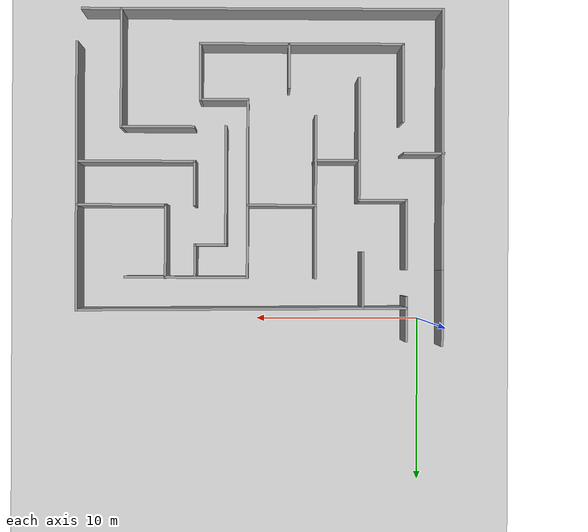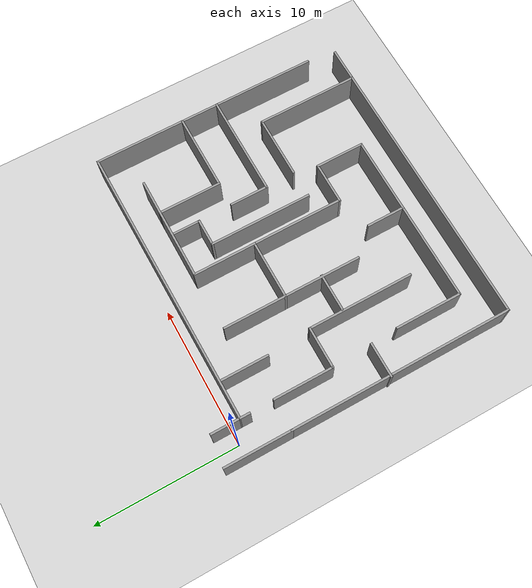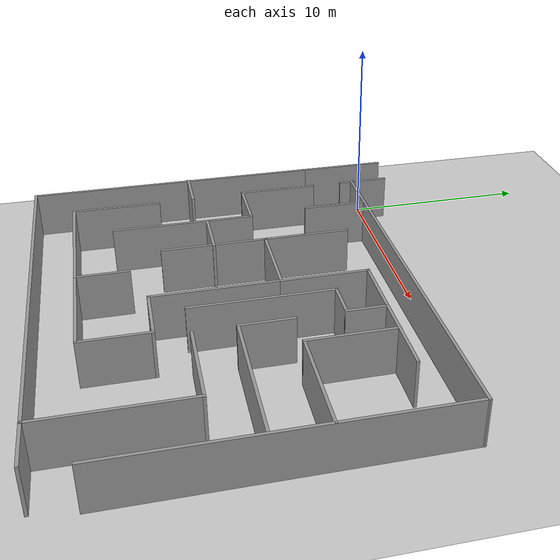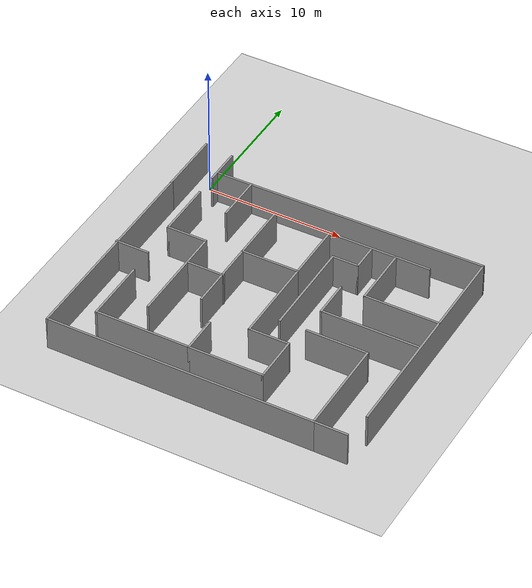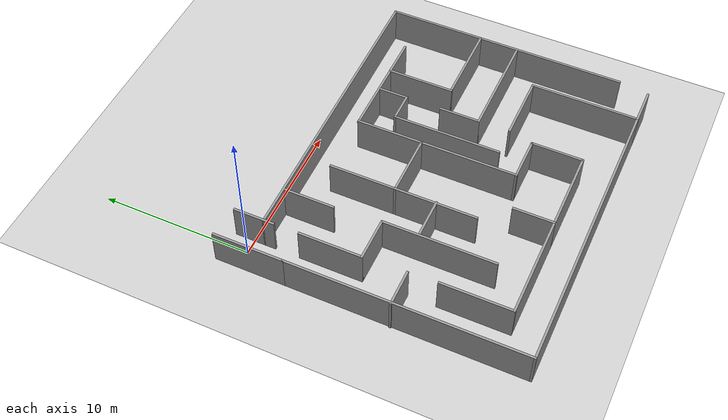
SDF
<sdf version="1.7">
 <world name="default">
  <light name="sun" type="directional">
   <pose>0 0 10 0 -0 0</pose>
   <diffuse>0.8 0.8 0.8 1</diffuse>
   <specular>0.2 0.2 0.2 1</specular>
   <attenuation>
    <range>1000</range>
    <constant>0.9</constant>
    <linear>0.01</linear>
    <quadratic>0.001</quadratic>
   </attenuation>
   <direction>-0.5 0.1 -0.9</direction>
   <spot><inner_angle>0</inner_angle><outer_angle>0</outer_angle><falloff>0</falloff></spot>
  </light>
  <model name="ground_plane">
   <static>1</static>
   <link name="link">
    <collision name="collision">
     <geometry><plane><normal>0 0 1</normal><size>100 100</size></plane></geometry>
     <surface><friction><ode><mu>100</mu><mu2>50</mu2></ode></friction></surface>
    </collision>
    <visual name="visual">
     <cast_shadows>0</cast_shadows>
     <geometry><plane><normal>0 0 1</normal><size>100 100</size></plane></geometry>
     <material>
      <script><uri>file://media/materials/scripts/gazebo.material</uri><name>Gazebo/Grey</name></script>
     </material>
    </visual>
   </link>
  </model>
  <gravity>0 0 -9.8</gravity>
  <magnetic_field>6e-06 2.3e-05 -4.2e-05</magnetic_field>
  <atmosphere type="adiabatic"/>
  <physics type="ode">
   <max_step_size>0.001</max_step_size>
   <real_time_factor>1</real_time_factor>
   <real_time_update_rate>1000</real_time_update_rate>
  </physics>
  <scene><ambient>0.4 0.4 0.4 1</ambient><background>0.7 0.7 0.7 1</background><shadows>1</shadows></scene>
  <spherical_coordinates>
   <surface_model>EARTH_WGS84</surface_model>
   <latitude_deg>0</latitude_deg>
   <longitude_deg>0</longitude_deg>
   <elevation>0</elevation>
   <heading_deg>0</heading_deg>
  </spherical_coordinates>
  <model name="maze_jet">
   <pose>9.84314 -8.60321 0 0 -0 0</pose>
   <link name="Wall_34">
    <collision name="Wall_34_Collision">
     <geometry><box><size>15.75 0.15 2.5</size></box></geometry>
     <pose>0 0 1.25 0 -0 0</pose>
    </collision>
    <visual name="Wall_34_Visual">
     <pose>0 0 1.25 0 -0 0</pose>
     <geometry><box><size>15.75 0.15 2.5</size></box></geometry>
     <material>
      <script><uri>file://media/materials/scripts/gazebo.material</uri><name>Gazebo/Grey</name></script>
      <ambient>1 1 1 1</ambient>
     </material>
     <meta><layer>0</layer></meta>
    </visual>
    <pose>-10.9779 -2.3 0 0 -0 -1.5708</pose>
   </link>
   <link name="Wall_35">
    <collision name="Wall_35_Collision">
     <geometry><box><size>19.5 0.15 2.5</size></box></geometry>
     <pose>0 0 1.25 0 -0 0</pose>
    </collision>
    <visual name="Wall_35_Visual">
     <pose>0 0 1.25 0 -0 0</pose>
     <geometry><box><size>19.5 0.15 2.5</size></box></geometry>
     <material>
      <script><uri>file://media/materials/scripts/gazebo.material</uri><name>Gazebo/Grey</name></script>
      <ambient>1 1 1 1</ambient>
     </material>
     <meta><layer>0</layer></meta>
    </visual>
    <pose>-1.30295 -10.1 0 0 -0 0</pose>
   </link>
   <link name="Wall_36">
    <collision name="Wall_36_Collision">
     <geometry><box><size>7.25 0.15 2.5</size></box></geometry>
     <pose>0 0 1.25 0 -0 0</pose>
    </collision>
    <visual name="Wall_36_Visual">
     <pose>0 0 1.25 0 -0 0</pose>
     <geometry><box><size>7.25 0.15 2.5</size></box></geometry>
     <material>
      <script><uri>file://media/materials/scripts/gazebo.material</uri><name>Gazebo/Grey</name></script>
      <ambient>1 1 1 1</ambient>
     </material>
     <meta><layer>0</layer></meta>
    </visual>
    <pose>8.37205 -6.55 0 0 -0 1.5708</pose>
   </link>
   <link name="Wall_37">
    <collision name="Wall_37_Collision">
     <geometry><box><size>4.5 0.15 2.5</size></box></geometry>
     <pose>0 0 1.25 0 -0 0</pose>
    </collision>
    <visual name="Wall_37_Visual">
     <pose>0 0 1.25 0 -0 0</pose>
     <geometry><box><size>4.5 0.15 2.5</size></box></geometry>
     <material>
      <script><uri>file://media/materials/scripts/gazebo.material</uri><name>Gazebo/Grey</name></script>
      <ambient>1 1 1 1</ambient>
     </material>
     <meta><layer>0</layer></meta>
    </visual>
    <pose>6.19705 -3 0 0 -0 3.14159</pose>
   </link>
   <link name="Wall_41">
    <collision name="Wall_41_Collision">
     <geometry><box><size>16.25 0.15 2.5</size></box></geometry>
     <pose>0 0 1.25 0 -0 0</pose>
    </collision>
    <visual name="Wall_41_Visual">
     <pose>0 0 1.25 0 -0 0</pose>
     <geometry><box><size>16.25 0.15 2.5</size></box></geometry>
     <material>
      <script><uri>file://media/materials/scripts/gazebo.material</uri><name>Gazebo/Grey</name></script>
      <ambient>1 1 1 1</ambient>
     </material>
     <meta><layer>0</layer></meta>
    </visual>
    <pose>11.0497 -0.017391 0 0 -0 -1.5708</pose>
   </link>
   <link name="Wall_43">
    <collision name="Wall_43_Collision">
     <geometry><box><size>2.5 0.15 2.5</size></box></geometry>
     <pose>0 0 1.25 0 -0 0</pose>
    </collision>
    <visual name="Wall_43_Visual">
     <pose>0 0 1.25 0 -0 0</pose>
     <geometry><box><size>2.5 0.15 2.5</size></box></geometry>
     <material>
      <script><uri>file://media/materials/scripts/gazebo.material</uri><name>Gazebo/Grey</name></script>
      <ambient>1 1 1 1</ambient>
     </material>
     <meta><layer>0</layer></meta>
    </visual>
    <pose>9.54705 -10.1 0 0 -0 0</pose>
   </link>
   <link name="Wall_45">
    <collision name="Wall_45_Collision">
     <geometry><box><size>4.25 0.15 2.5</size></box></geometry>
     <pose>0 0 1.25 0 -0 0</pose>
    </collision>
    <visual name="Wall_45_Visual">
     <pose>0 0 1.25 0 -0 0</pose>
     <geometry><box><size>4.25 0.15 2.5</size></box></geometry>
     <material>
      <script><uri>file://media/materials/scripts/gazebo.material</uri><name>Gazebo/Grey</name></script>
      <ambient>1 1 1 1</ambient>
     </material>
     <meta><layer>0</layer></meta>
    </visual>
    <pose>-8.80714 3.45 0 0 -0 -1.5708</pose>
   </link>
   <link name="Wall_46">
    <collision name="Wall_46_Collision">
     <geometry><box><size>3 0.15 2.5</size></box></geometry>
     <pose>0 0 1.25 0 -0 0</pose>
    </collision>
    <visual name="Wall_46_Visual">
     <pose>0 0 1.25 0 -0 0</pose>
     <geometry><box><size>3 0.15 2.5</size></box></geometry>
     <material>
      <script><uri>file://media/materials/scripts/gazebo.material</uri><name>Gazebo/Grey</name></script>
      <ambient>1 1 1 1</ambient>
     </material>
     <meta><layer>0</layer></meta>
    </visual>
    <pose>-7.38214 1.4 0 0 -0 0</pose>
   </link>
   <link name="Wall_49">
    <collision name="Wall_49_Collision">
     <geometry><box><size>7.5 0.15 2.5</size></box></geometry>
     <pose>0 0 1.25 0 -0 0</pose>
    </collision>
    <visual name="Wall_49_Visual">
     <pose>0 0 1.25 0 -0 0</pose>
     <geometry><box><size>7.5 0.15 2.5</size></box></geometry>
     <material>
      <script><uri>file://media/materials/scripts/gazebo.material</uri><name>Gazebo/Grey</name></script>
      <ambient>1 1 1 1</ambient>
     </material>
     <meta><layer>0</layer></meta>
    </visual>
    <pose>-5.95714 -2.275 0 0 -0 -1.5708</pose>
   </link>
   <link name="Wall_53">
    <collision name="Wall_53_Collision">
     <geometry><box><size>2.5 0.15 2.5</size></box></geometry>
     <pose>0 0 1.25 0 -0 0</pose>
    </collision>
    <visual name="Wall_53_Visual">
     <pose>0 0 1.25 0 -0 0</pose>
     <geometry><box><size>2.5 0.15 2.5</size></box></geometry>
     <material>
      <script><uri>file://media/materials/scripts/gazebo.material</uri><name>Gazebo/Grey</name></script>
      <ambient>1 1 1 1</ambient>
     </material>
     <meta><layer>0</layer></meta>
    </visual>
    <pose>-9.87531 -1.44659 0 0 -0 0</pose>
   </link>
   <link name="Wall_55">
    <collision name="Wall_55_Collision">
     <geometry><box><size>4.75 0.15 2.5</size></box></geometry>
     <pose>0 0 1.25 0 -0 0</pose>
    </collision>
    <visual name="Wall_55_Visual">
     <pose>0 0 1.25 0 -0 0</pose>
     <geometry><box><size>4.75 0.15 2.5</size></box></geometry>
     <material>
      <script><uri>file://media/materials/scripts/gazebo.material</uri><name>Gazebo/Grey</name></script>
      <ambient>1 1 1 1</ambient>
     </material>
     <meta><layer>0</layer></meta>
    </visual>
    <pose>-8.59006 -5.70031 0 0 -0 -1.5708</pose>
   </link>
   <link name="Wall_56">
    <collision name="Wall_56_Collision">
     <geometry><box><size>7 0.15 2.5</size></box></geometry>
     <pose>0 0 1.25 0 -0 0</pose>
    </collision>
    <visual name="Wall_56_Visual">
     <pose>0 0 1.25 0 -0 0</pose>
     <geometry><box><size>7 0.15 2.5</size></box></geometry>
     <material>
      <script><uri>file://media/materials/scripts/gazebo.material</uri><name>Gazebo/Grey</name></script>
      <ambient>1 1 1 1</ambient>
     </material>
     <meta><layer>0</layer></meta>
    </visual>
    <pose>-5.16506 -8.00031 0 0 -0 0</pose>
   </link>
   <link name="Wall_57">
    <collision name="Wall_57_Collision">
     <geometry><box><size>2.75 0.15 2.5</size></box></geometry>
     <pose>0 0 1.25 0 -0 0</pose>
    </collision>
    <visual name="Wall_57_Visual">
     <pose>0 0 1.25 0 -0 0</pose>
     <geometry><box><size>2.75 0.15 2.5</size></box></geometry>
     <material>
      <script><uri>file://media/materials/scripts/gazebo.material</uri><name>Gazebo/Grey</name></script>
      <ambient>1 1 1 1</ambient>
     </material>
     <meta><layer>0</layer></meta>
    </visual>
    <pose>-1.74006 -6.70031 0 0 -0 1.5708</pose>
   </link>
   <link name="Wall_59">
    <collision name="Wall_59_Collision">
     <geometry><box><size>5.5 0.15 2.5</size></box></geometry>
     <pose>0 0 1.25 0 -0 0</pose>
    </collision>
    <visual name="Wall_59_Visual">
     <pose>0 0 1.25 0 -0 0</pose>
     <geometry><box><size>5.5 0.15 2.5</size></box></geometry>
     <material>
      <script><uri>file://media/materials/scripts/gazebo.material</uri><name>Gazebo/Grey</name></script>
      <ambient>1 1 1 1</ambient>
     </material>
     <meta><layer>0</layer></meta>
    </visual>
    <pose>0.934939 -8.00031 0 0 -0 0</pose>
   </link>
   <link name="Wall_60">
    <collision name="Wall_60_Collision">
     <geometry><box><size>3.5 0.15 2.5</size></box></geometry>
     <pose>0 0 1.25 0 -0 0</pose>
    </collision>
    <visual name="Wall_60_Visual">
     <pose>0 0 1.25 0 -0 0</pose>
     <geometry><box><size>3.5 0.15 2.5</size></box></geometry>
     <material>
      <script><uri>file://media/materials/scripts/gazebo.material</uri><name>Gazebo/Grey</name></script>
      <ambient>1 1 1 1</ambient>
     </material>
     <meta><layer>0</layer></meta>
    </visual>
    <pose>3.60994 -6.32531 0 0 -0 1.5708</pose>
   </link>
   <link name="Wall_61">
    <collision name="Wall_61_Collision">
     <geometry><box><size>3 0.15 2.5</size></box></geometry>
     <pose>0 0 1.25 0 -0 0</pose>
    </collision>
    <visual name="Wall_61_Visual">
     <pose>0 0 1.25 0 -0 0</pose>
     <geometry><box><size>3 0.15 2.5</size></box></geometry>
     <material>
      <script><uri>file://media/materials/scripts/gazebo.material</uri><name>Gazebo/Grey</name></script>
      <ambient>1 1 1 1</ambient>
     </material>
     <meta><layer>0</layer></meta>
    </visual>
    <pose>2.18494 -4.65031 0 0 -0 3.14159</pose>
   </link>
   <link name="Wall_62">
    <collision name="Wall_62_Collision">
     <geometry><box><size>6.5 0.15 2.5</size></box></geometry>
     <pose>0 0 1.25 0 -0 0</pose>
    </collision>
    <visual name="Wall_62_Visual">
     <pose>0 0 1.25 0 -0 0</pose>
     <geometry><box><size>6.5 0.15 2.5</size></box></geometry>
     <material>
      <script><uri>file://media/materials/scripts/gazebo.material</uri><name>Gazebo/Grey</name></script>
      <ambient>1 1 1 1</ambient>
     </material>
     <meta><layer>0</layer></meta>
    </visual>
    <pose>0.759939 -1.47531 0 0 -0 1.5708</pose>
   </link>
   <link name="Wall_63">
    <collision name="Wall_63_Collision">
     <geometry><box><size>4.25 0.15 2.5</size></box></geometry>
     <pose>0 0 1.25 0 -0 0</pose>
    </collision>
    <visual name="Wall_63_Visual">
     <pose>0 0 1.25 0 -0 0</pose>
     <geometry><box><size>4.25 0.15 2.5</size></box></geometry>
     <material>
      <script><uri>file://media/materials/scripts/gazebo.material</uri><name>Gazebo/Grey</name></script>
      <ambient>1 1 1 1</ambient>
     </material>
     <meta><layer>0</layer></meta>
    </visual>
    <pose>-1.29006 1.69969 0 0 -0 3.14159</pose>
   </link>
   <link name="Wall_64">
    <collision name="Wall_64_Collision">
     <geometry><box><size>5.5 0.15 2.5</size></box></geometry>
     <pose>0 0 1.25 0 -0 0</pose>
    </collision>
    <visual name="Wall_64_Visual">
     <pose>0 0 1.25 0 -0 0</pose>
     <geometry><box><size>5.5 0.15 2.5</size></box></geometry>
     <material>
      <script><uri>file://media/materials/scripts/gazebo.material</uri><name>Gazebo/Grey</name></script>
      <ambient>1 1 1 1</ambient>
     </material>
     <meta><layer>0</layer></meta>
    </visual>
    <pose>-3.34006 -0.975314 0 0 -0 -1.5708</pose>
   </link>
   <link name="Wall_69">
    <collision name="Wall_69_Collision">
     <geometry><box><size>3.5 0.15 2.5</size></box></geometry>
     <pose>0 0 1.25 0 -0 0</pose>
    </collision>
    <visual name="Wall_69_Visual">
     <pose>0 0 1.25 0 -0 0</pose>
     <geometry><box><size>3.5 0.15 2.5</size></box></geometry>
     <material>
      <script><uri>file://media/materials/scripts/gazebo.material</uri><name>Gazebo/Grey</name></script>
      <ambient>1 1 1 1</ambient>
     </material>
     <meta><layer>0</layer></meta>
    </visual>
    <pose>-6.20217 6.21289 0 0 -0 -1.5708</pose>
   </link>
   <link name="Wall_73">
    <collision name="Wall_73_Collision">
     <geometry><box><size>2.75 0.15 2.5</size></box></geometry>
     <pose>0 0 1.25 0 -0 0</pose>
    </collision>
    <visual name="Wall_73_Visual">
     <pose>0 0 1.25 0 -0 0</pose>
     <geometry><box><size>2.75 0.15 2.5</size></box></geometry>
     <material>
      <script><uri>file://media/materials/scripts/gazebo.material</uri><name>Gazebo/Grey</name></script>
      <ambient>1 1 1 1</ambient>
     </material>
     <meta><layer>0</layer></meta>
    </visual>
    <pose>-4.58408 -0.998968 0 0 -0 3.14159</pose>
   </link>
   <link name="Wall_75">
    <collision name="Wall_75_Collision">
     <geometry><box><size>4.5 0.15 2.5</size></box></geometry>
     <pose>0 0 1.25 0 -0 0</pose>
    </collision>
    <visual name="Wall_75_Visual">
     <pose>0 0 1.25 0 -0 0</pose>
     <geometry><box><size>4.5 0.15 2.5</size></box></geometry>
     <material>
      <script><uri>file://media/materials/scripts/gazebo.material</uri><name>Gazebo/Grey</name></script>
      <ambient>1 1 1 1</ambient>
     </material>
     <meta><layer>0</layer></meta>
    </visual>
    <pose>-3.34006 3.87469 0 0 -0 1.5708</pose>
   </link>
   <link name="Wall_77">
    <collision name="Wall_77_Collision">
     <geometry><box><size>4.5 0.15 2.5</size></box></geometry>
     <pose>0 0 1.25 0 -0 0</pose>
    </collision>
    <visual name="Wall_77_Visual">
     <pose>0 0 1.25 0 -0 0</pose>
     <geometry><box><size>4.5 0.15 2.5</size></box></geometry>
     <material>
      <script><uri>file://media/materials/scripts/gazebo.material</uri><name>Gazebo/Grey</name></script>
      <ambient>1 1 1 1</ambient>
     </material>
     <meta><layer>0</layer></meta>
    </visual>
    <pose>0.759939 3.87469 0 0 -0 1.5708</pose>
   </link>
   <link name="Wall_78">
    <collision name="Wall_78_Collision">
     <geometry><box><size>7.5 0.15 2.5</size></box></geometry>
     <pose>0 0 1.25 0 -0 0</pose>
    </collision>
    <visual name="Wall_78_Visual">
     <pose>0 0 1.25 0 -0 0</pose>
     <geometry><box><size>7.5 0.15 2.5</size></box></geometry>
     <material>
      <script><uri>file://media/materials/scripts/gazebo.material</uri><name>Gazebo/Grey</name></script>
      <ambient>1 1 1 1</ambient>
     </material>
     <meta><layer>0</layer></meta>
    </visual>
    <pose>4.43494 6.04969 0 0 -0 0</pose>
   </link>
   <link name="Wall_80">
    <collision name="Wall_80_Collision">
     <geometry><box><size>4.5 0.15 2.5</size></box></geometry>
     <pose>0 0 1.25 0 -0 0</pose>
    </collision>
    <visual name="Wall_80_Visual">
     <pose>0 0 1.25 0 -0 0</pose>
     <geometry><box><size>4.5 0.15 2.5</size></box></geometry>
     <material>
      <script><uri>file://media/materials/scripts/gazebo.material</uri><name>Gazebo/Grey</name></script>
      <ambient>1 1 1 1</ambient>
     </material>
     <meta><layer>0</layer></meta>
    </visual>
    <pose>5.6886 3.88116 0 0 -0 -1.5708</pose>
   </link>
   <link name="Wall_81">
    <collision name="Wall_81_Collision">
     <geometry><box><size>5.5 0.15 2.5</size></box></geometry>
     <pose>0 0 1.25 0 -0 0</pose>
    </collision>
    <visual name="Wall_81_Visual">
     <pose>0 0 1.25 0 -0 0</pose>
     <geometry><box><size>5.5 0.15 2.5</size></box></geometry>
     <material>
      <script><uri>file://media/materials/scripts/gazebo.material</uri><name>Gazebo/Grey</name></script>
      <ambient>1 1 1 1</ambient>
     </material>
     <meta><layer>0</layer></meta>
    </visual>
    <pose>8.3636 1.70616 0 0 -0 0</pose>
   </link>
   <link name="Wall_83">
    <collision name="Wall_83_Collision">
     <geometry><box><size>2.75 0.15 2.5</size></box></geometry>
     <pose>0 0 1.25 0 -0 0</pose>
    </collision>
    <visual name="Wall_83_Visual">
     <pose>0 0 1.25 0 -0 0</pose>
     <geometry><box><size>2.75 0.15 2.5</size></box></geometry>
     <material>
      <script><uri>file://media/materials/scripts/gazebo.material</uri><name>Gazebo/Grey</name></script>
      <ambient>1 1 1 1</ambient>
     </material>
     <meta><layer>0</layer></meta>
    </visual>
    <pose>3.94038 0.380407 0 0 -0 -1.5708</pose>
   </link>
   <link name="Wall_84">
    <collision name="Wall_84_Collision">
     <geometry><box><size>7.25 0.15 2.5</size></box></geometry>
     <pose>0 0 1.25 0 -0 0</pose>
    </collision>
    <visual name="Wall_84_Visual">
     <pose>0 0 1.25 0 -0 0</pose>
     <geometry><box><size>7.25 0.15 2.5</size></box></geometry>
     <material>
      <script><uri>file://media/materials/scripts/gazebo.material</uri><name>Gazebo/Grey</name></script>
      <ambient>1 1 1 1</ambient>
     </material>
     <meta><layer>0</layer></meta>
    </visual>
    <pose>7.49038 -0.919592 0 0 -0 0</pose>
   </link>
   <link name="Wall_88">
    <collision name="Wall_88_Collision">
     <geometry><box><size>2 0.15 2.5</size></box></geometry>
     <pose>0 0 1.25 0 -0 0</pose>
    </collision>
    <visual name="Wall_88_Visual">
     <pose>0 0 1.25 0 -0 0</pose>
     <geometry><box><size>2 0.15 2.5</size></box></geometry>
     <material>
      <script><uri>file://media/materials/scripts/gazebo.material</uri><name>Gazebo/Grey</name></script>
      <ambient>1 1 1 1</ambient>
     </material>
     <meta><layer>0</layer></meta>
    </visual>
    <pose>2.98813 4.09254 0 0 -0 0</pose>
   </link>
   <link name="Wall_89">
    <collision name="Wall_89_Collision">
     <geometry><box><size>2 0.15 2.5</size></box></geometry>
     <pose>0 0 1.25 0 -0 0</pose>
    </collision>
    <visual name="Wall_89_Visual">
     <pose>0 0 1.25 0 -0 0</pose>
     <geometry><box><size>2 0.15 2.5</size></box></geometry>
     <material>
      <script><uri>file://media/materials/scripts/gazebo.material</uri><name>Gazebo/Grey</name></script>
      <ambient>1 1 1 1</ambient>
     </material>
     <meta><layer>0</layer></meta>
    </visual>
    <pose>3.91313 5.01754 0 0 -0 1.5708</pose>
   </link>
   <link name="Wall_91">
    <collision name="Wall_91_Collision">
     <geometry><box><size>7.25 0.15 2.5</size></box></geometry>
     <pose>0 0 1.25 0 -0 0</pose>
    </collision>
    <visual name="Wall_91_Visual">
     <pose>0 0 1.25 0 -0 0</pose>
     <geometry><box><size>7.25 0.15 2.5</size></box></geometry>
     <material>
      <script><uri>file://media/materials/scripts/gazebo.material</uri><name>Gazebo/Grey</name></script>
      <ambient>1 1 1 1</ambient>
     </material>
     <meta><layer>0</layer></meta>
    </visual>
    <pose>2.06313 0.542541 0 0 -0 -1.5708</pose>
   </link>
   <link name="Wall_93">
    <collision name="Wall_93_Collision">
     <geometry><box><size>4.75 0.15 2.5</size></box></geometry>
     <pose>0 0 1.25 0 -0 0</pose>
    </collision>
    <visual name="Wall_93_Visual">
     <pose>0 0 1.25 0 -0 0</pose>
     <geometry><box><size>4.75 0.15 2.5</size></box></geometry>
     <material>
      <script><uri>file://media/materials/scripts/gazebo.material</uri><name>Gazebo/Grey</name></script>
      <ambient>1 1 1 1</ambient>
     </material>
     <meta><layer>0</layer></meta>
    </visual>
    <pose>-10.9779 7.8 0 0 -0 1.5708</pose>
   </link>
   <link name="Wall_95">
    <collision name="Wall_95_Collision">
     <geometry><box><size>2.75 0.15 2.5</size></box></geometry>
     <pose>0 0 1.25 0 -0 0</pose>
    </collision>
    <visual name="Wall_95_Visual">
     <pose>0 0 1.25 0 -0 0</pose>
     <geometry><box><size>2.75 0.15 2.5</size></box></geometry>
     <material>
      <script><uri>file://media/materials/scripts/gazebo.material</uri><name>Gazebo/Grey</name></script>
      <ambient>1 1 1 1</ambient>
     </material>
     <meta><layer>0</layer></meta>
    </visual>
    <pose>-8.82511 8.53759 0 0 -0 -1.5708</pose>
   </link>
   <link name="Wall_97">
    <collision name="Wall_97_Collision">
     <geometry><box><size>20.0255 0.15 2.5</size></box></geometry>
     <pose>0 0 1.25 0 -0 0</pose>
    </collision>
    <visual name="Wall_97_Visual">
     <pose>0 0 1.25 0 -0 0</pose>
     <geometry><box><size>20.0255 0.15 2.5</size></box></geometry>
     <material>
      <script><uri>file://media/materials/scripts/gazebo.material</uri><name>Gazebo/Grey</name></script>
      <ambient>1 1 1 1</ambient>
     </material>
     <meta><layer>0</layer></meta>
    </visual>
    <pose>1.11229 7.95024 0 0 -0 0.008289</pose>
   </link>
   <static>1</static>
  </model>
 </world>
</sdf>
